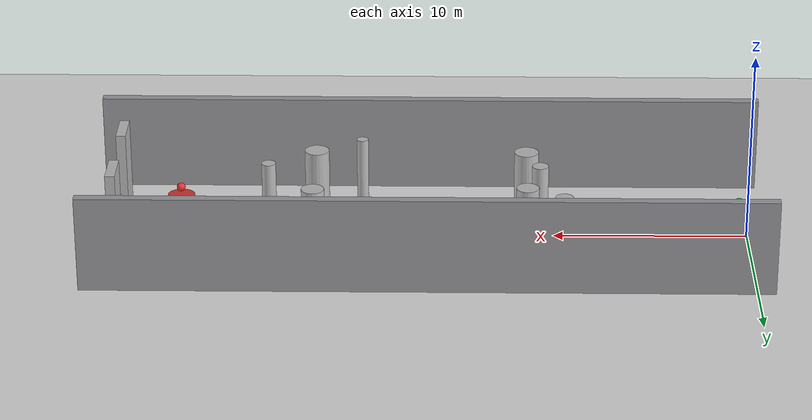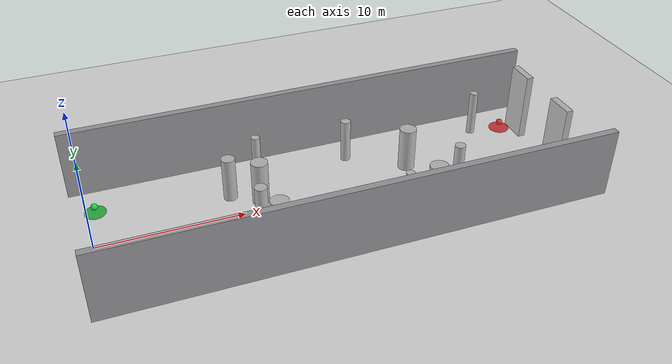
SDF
<sdf version="1.10">
 <world name="obstacle_avoidance">
  <physics type="ode">
   <max_step_size>0.0040000000000000001</max_step_size>
   <real_time_factor>1</real_time_factor>
   <real_time_update_rate>250</real_time_update_rate>
  </physics>
  <plugin name="gz::sim::systems::Physics" filename="gz-sim-physics-system"/>
  <plugin name="gz::sim::systems::UserCommands" filename="gz-sim-user-commands-system"/>
  <plugin name="gz::sim::systems::SceneBroadcaster" filename="gz-sim-scene-broadcaster-system"/>
  <plugin name="gz::sim::systems::Contact" filename="gz-sim-contact-system"/>
  <plugin name="gz::sim::systems::Imu" filename="gz-sim-imu-system"/>
  <plugin name="gz::sim::systems::AirPressure" filename="gz-sim-air-pressure-system"/>
  <plugin name="gz::sim::systems::AirSpeed" filename="gz-sim-air-speed-system"/>
  <plugin name="gz::sim::systems::ApplyLinkWrench" filename="gz-sim-apply-link-wrench-system"/>
  <plugin name="gz::sim::systems::NavSat" filename="gz-sim-navsat-system"/>
  <plugin name="gz::sim::systems::Magnetometer" filename="gz-sim-magnetometer-system"/>
  <plugin name="gz::sim::systems::Sensors" filename="gz-sim-sensors-system">
   <render_engine>ogre2</render_engine>
  </plugin>
  <plugin name="custom::OpticalFlowSystem" filename="libOpticalFlowSystem.so"/>
  <plugin name="custom::GstCameraSystem" filename="libGstCameraSystem.so"/>
  <gravity>0 0 -9.8000000000000007</gravity>
  <magnetic_field>6.0000000000000002e-06 2.3e-05 -4.1999999999999998e-05</magnetic_field>
  <atmosphere type="adiabatic"/>
  <scene>
   <grid>true</grid>
   <ambient>0.449999988 0.449999988 0.449999988 1</ambient>
   <background>0.74000001 0.769999981 0.819999993 1</background>
   <shadows>true</shadows>
  </scene>
  <spherical_coordinates>
   <surface_model>EARTH_WGS84</surface_model>
   <world_frame_orientation>ENU</world_frame_orientation>
   <latitude_deg>47.397971057728974</latitude_deg>
   <longitude_deg>8.5461637398001464</longitude_deg>
   <elevation>0</elevation>
   <heading_deg>0</heading_deg>
  </spherical_coordinates>
  <model name="ground_plane">
   <static>true</static>
   <link name="link">
    <collision name="collision">
     <geometry><plane><normal>0 0 1</normal><size>1 1</size></plane></geometry>
    </collision>
    <visual name="visual">
     <geometry><plane><normal>0 0 1</normal><size>120 120</size></plane></geometry>
     <material>
      <ambient>0.850000024 0.850000024 0.850000024 1</ambient>
      <diffuse>0.850000024 0.850000024 0.850000024 1</diffuse>
      <specular>0.400000006 0.400000006 0.400000006 1</specular>
     </material>
    </visual>
    <inertial>
     <mass>1</mass>
     <inertia><ixx>1</ixx><ixy>0</ixy><ixz>0</ixz><iyy>1</iyy><iyz>0</iyz><izz>1</izz></inertia>
    </inertial>
   </link>
  </model>
  <model name="lane_left_wall">
   <static>false</static>
   <pose>16.477354 6.271126 2.500000 0 0 0.000000</pose>
   <link name="link">
    <collision name="collision">
     <geometry><box><size>34.807668 0.500000 5.000000</size></box></geometry>
    </collision>
    <visual name="visual">
     <geometry><box><size>34.807668 0.500000 5.000000</size></box></geometry>
     <material>
      <ambient>0.5 0.5 0.519999981 1</ambient>
      <diffuse>0.600000024 0.600000024 0.620000005 1</diffuse>
     </material>
    </visual>
    <inertial>
     <mass>1</mass>
     <inertia><ixx>1</ixx><ixy>0</ixy><ixz>0</ixz><iyy>1</iyy><iyz>0</iyz><izz>1</izz></inertia>
    </inertial>
   </link>
  </model>
  <model name="lane_right_wall">
   <static>false</static>
   <pose>16.477354 -6.271126 2.500000 0 0 0.000000</pose>
   <link name="link">
    <collision name="collision">
     <geometry><box><size>34.807668 0.500000 5.000000</size></box></geometry>
    </collision>
    <visual name="visual">
     <geometry><box><size>34.807668 0.500000 5.000000</size></box></geometry>
     <material>
      <ambient>0.5 0.5 0.519999981 1</ambient>
      <diffuse>0.600000024 0.600000024 0.620000005 1</diffuse>
     </material>
    </visual>
    <inertial>
     <mass>1</mass>
     <inertia><ixx>1</ixx><ixy>0</ixy><ixz>0</ixz><iyy>1</iyy><iyz>0</iyz><izz>1</izz></inertia>
    </inertial>
   </link>
  </model>
  <model name="cyl_01">
   <static>false</static>
   <pose>12 4 1.5999992086633334 2.2687360345456637e-18 4.5657228771581074e-18 -1.896154608907737e-19</pose>
   <link name="link">
    <collision name="collision">
     <geometry>
      <cylinder><radius>0.29999999999999999</radius><length>3.2000000000000002</length></cylinder>
     </geometry>
    </collision>
    <visual name="visual">
     <geometry>
      <cylinder><radius>0.29999999999999999</radius><length>3.2000000000000002</length></cylinder>
     </geometry>
    </visual>
    <inertial>
     <mass>1</mass>
     <inertia><ixx>1</ixx><ixy>0</ixy><ixz>0</ixz><iyy>1</iyy><iyz>0</iyz><izz>1</izz></inertia>
    </inertial>
   </link>
  </model>
  <model name="cyl_02">
   <static>false</static>
   <pose>20 -4.0999999999999996 1.7999992086633334 -5.95015447457351e-18 -7.1830272029298781e-18 8.102279845254366e-20</pose>
   <link name="link">
    <collision name="collision">
     <geometry>
      <cylinder><radius>0.29999999999999999</radius><length>3.6000000000000001</length></cylinder>
     </geometry>
    </collision>
    <visual name="visual">
     <geometry>
      <cylinder><radius>0.29999999999999999</radius><length>3.6000000000000001</length></cylinder>
     </geometry>
    </visual>
    <inertial>
     <mass>1</mass>
     <inertia><ixx>1</ixx><ixy>0</ixy><ixz>0</ixz><iyy>1</iyy><iyz>0</iyz><izz>1</izz></inertia>
    </inertial>
   </link>
  </model>
  <model name="cyl_03">
   <static>false</static>
   <pose>29 3.7999999999999998 1.6999992086633333 2.9183300555717811e-18 3.6794603956307752e-18 6.9962869253696579e-20</pose>
   <link name="link">
    <collision name="collision">
     <geometry>
      <cylinder><radius>0.29999999999999999</radius><length>3.3999999999999999</length></cylinder>
     </geometry>
    </collision>
    <visual name="visual">
     <geometry>
      <cylinder><radius>0.29999999999999999</radius><length>3.3999999999999999</length></cylinder>
     </geometry>
    </visual>
    <inertial>
     <mass>1</mass>
     <inertia><ixx>1</ixx><ixy>0</ixy><ixz>0</ixz><iyy>1</iyy><iyz>0</iyz><izz>1</izz></inertia>
    </inertial>
   </link>
  </model>
  <model name="block_01">
   <static>false</static>
   <pose>11.377972 1.004171 1.600000 0 0 0.000000</pose>
   <link name="link">
    <collision name="collision">
     <geometry><cylinder><radius>0.580680</radius><length>3.200000</length></cylinder></geometry>
    </collision>
    <visual name="visual">
     <geometry><cylinder><radius>0.580680</radius><length>3.200000</length></cylinder></geometry>
    </visual>
    <inertial>
     <mass>1</mass>
     <inertia><ixx>1</ixx><ixy>0</ixy><ixz>0</ixz><iyy>1</iyy><iyz>0</iyz><izz>1</izz></inertia>
    </inertial>
   </link>
  </model>
  <model name="block_02">
   <static>false</static>
   <pose>11.377972 -3.445346 1.600000 0 0 0.000000</pose>
   <link name="link">
    <collision name="collision">
     <geometry><cylinder><radius>0.631644</radius><length>3.200000</length></cylinder></geometry>
    </collision>
    <visual name="visual">
     <geometry><cylinder><radius>0.631644</radius><length>3.200000</length></cylinder></geometry>
    </visual>
    <inertial>
     <mass>1</mass>
     <inertia><ixx>1</ixx><ixy>0</ixy><ixz>0</ixz><iyy>1</iyy><iyz>0</iyz><izz>1</izz></inertia>
    </inertial>
   </link>
  </model>
  <model name="block_03">
   <static>false</static>
   <pose>22.380177 1.285800 1.600000 0 0 0.000000</pose>
   <link name="link">
    <collision name="collision">
     <geometry><cylinder><radius>0.591450</radius><length>3.200000</length></cylinder></geometry>
    </collision>
    <visual name="visual">
     <geometry><cylinder><radius>0.591450</radius><length>3.200000</length></cylinder></geometry>
    </visual>
    <inertial>
     <mass>1</mass>
     <inertia><ixx>1</ixx><ixy>0</ixy><ixz>0</ixz><iyy>1</iyy><iyz>0</iyz><izz>1</izz></inertia>
    </inertial>
   </link>
  </model>
  <model name="block_04">
   <static>false</static>
   <pose>22.380177 -3.539328 1.600000 0 0 0.000000</pose>
   <link name="link">
    <collision name="collision">
     <geometry><cylinder><radius>0.637507</radius><length>3.200000</length></cylinder></geometry>
    </collision>
    <visual name="visual">
     <geometry><cylinder><radius>0.637507</radius><length>3.200000</length></cylinder></geometry>
    </visual>
    <inertial>
     <mass>1</mass>
     <inertia><ixx>1</ixx><ixy>0</ixy><ixz>0</ixz><iyy>1</iyy><iyz>0</iyz><izz>1</izz></inertia>
    </inertial>
   </link>
  </model>
  <model name="block_05">
   <static>false</static>
   <pose>10.682277 -1.696494 1.600000 0 0 0.000000</pose>
   <link name="link">
    <collision name="collision">
     <geometry><cylinder><radius>0.424816</radius><length>3.200000</length></cylinder></geometry>
    </collision>
    <visual name="visual">
     <geometry><cylinder><radius>0.424816</radius><length>3.200000</length></cylinder></geometry>
    </visual>
    <inertial>
     <mass>1</mass>
     <inertia><ixx>1</ixx><ixy>0</ixy><ixz>0</ixz><iyy>1</iyy><iyz>0</iyz><izz>1</izz></inertia>
    </inertial>
   </link>
  </model>
  <model name="block_06">
   <static>false</static>
   <pose>18.642641 3.784791 1.600000 0 0 0.000000</pose>
   <link name="link">
    <collision name="collision">
     <geometry><cylinder><radius>0.350562</radius><length>3.200000</length></cylinder></geometry>
    </collision>
    <visual name="visual">
     <geometry><cylinder><radius>0.350562</radius><length>3.200000</length></cylinder></geometry>
    </visual>
    <inertial>
     <mass>1</mass>
     <inertia><ixx>1</ixx><ixy>0</ixy><ixz>0</ixz><iyy>1</iyy><iyz>0</iyz><izz>1</izz></inertia>
    </inertial>
   </link>
  </model>
  <model name="block_07">
   <static>false</static>
   <pose>9.542309 2.130448 1.600000 0 0 0.000000</pose>
   <link name="link">
    <collision name="collision">
     <geometry><cylinder><radius>0.470896</radius><length>3.200000</length></cylinder></geometry>
    </collision>
    <visual name="visual">
     <geometry><cylinder><radius>0.470896</radius><length>3.200000</length></cylinder></geometry>
    </visual>
    <inertial>
     <mass>1</mass>
     <inertia><ixx>1</ixx><ixy>0</ixy><ixz>0</ixz><iyy>1</iyy><iyz>0</iyz><izz>1</izz></inertia>
    </inertial>
   </link>
  </model>
  <model name="block_08">
   <static>false</static>
   <pose>24.823506 -1.874268 1.600000 0 0 0.000000</pose>
   <link name="link">
    <collision name="collision">
     <geometry><cylinder><radius>0.369808</radius><length>3.200000</length></cylinder></geometry>
    </collision>
    <visual name="visual">
     <geometry><cylinder><radius>0.369808</radius><length>3.200000</length></cylinder></geometry>
    </visual>
    <inertial>
     <mass>1</mass>
     <inertia><ixx>1</ixx><ixy>0</ixy><ixz>0</ixz><iyy>1</iyy><iyz>0</iyz><izz>1</izz></inertia>
    </inertial>
   </link>
  </model>
  <model name="start_marker">
   <static>true</static>
   <pose>0.573520 0.968252 2.000000 0 0 0.000000</pose>
   <link name="link">
    <gravity>false</gravity>
    <kinematic>true</kinematic>
    <visual name="base_ring">
     <geometry>
      <cylinder><radius>0.69999999999999996</radius><length>0.040000000000000001</length></cylinder>
     </geometry>
     <material>
      <ambient>0.100000001 0.699999988 0.200000003 0.850000024</ambient>
      <diffuse>0.100000001 0.699999988 0.200000003 0.850000024</diffuse>
      <specular>0.200000003 0.200000003 0.200000003 1</specular>
     </material>
    </visual>
    <visual name="center_sphere">
     <pose>0 0 0.45000000000000001 0 0 0</pose>
     <geometry><sphere><radius>0.22</radius></sphere></geometry>
     <material>
      <ambient>0.100000001 0.850000024 0.25 1</ambient>
      <diffuse>0.100000001 0.850000024 0.25 1</diffuse>
      <specular>0.300000012 0.300000012 0.300000012 1</specular>
     </material>
    </visual>
    <inertial>
     <mass>1</mass>
     <inertia><ixx>1</ixx><ixy>0</ixy><ixz>0</ixz><iyy>1</iyy><iyz>0</iyz><izz>1</izz></inertia>
    </inertial>
   </link>
  </model>
  <model name="goal_marker">
   <static>true</static>
   <pose>29.181188 0.340554 2.380000 0 0 0.000000</pose>
   <link name="link">
    <gravity>false</gravity>
    <kinematic>true</kinematic>
    <visual name="base_ring">
     <geometry>
      <cylinder><radius>0.69999999999999996</radius><length>0.040000000000000001</length></cylinder>
     </geometry>
     <material>
      <ambient>0.850000024 0.150000006 0.150000006 0.850000024</ambient>
      <diffuse>0.850000024 0.150000006 0.150000006 0.850000024</diffuse>
      <specular>0.200000003 0.200000003 0.200000003 1</specular>
     </material>
    </visual>
    <visual name="center_sphere">
     <pose>0 0 0.45000000000000001 0 0 0</pose>
     <geometry><sphere><radius>0.22</radius></sphere></geometry>
     <material>
      <ambient>0.949999988 0.200000003 0.200000003 1</ambient>
      <diffuse>0.949999988 0.200000003 0.200000003 1</diffuse>
      <specular>0.300000012 0.300000012 0.300000012 1</specular>
     </material>
    </visual>
    <inertial>
     <mass>1</mass>
     <inertia><ixx>1</ixx><ixy>0</ixy><ixz>0</ixz><iyy>1</iyy><iyz>0</iyz><izz>1</izz></inertia>
    </inertial>
   </link>
  </model>
  <model name="goal_gate_left">
   <static>false</static>
   <pose>32.381188 2.840554 2.500000 0 0 0.000000</pose>
   <link name="link">
    <collision name="collision">
     <geometry><box><size>0.500000 2.000000 5.000000</size></box></geometry>
    </collision>
    <visual name="visual"><geometry><box><size>0.500000 2.000000 5.000000</size></box></geometry></visual>
    <inertial>
     <mass>1</mass>
     <inertia><ixx>1</ixx><ixy>0</ixy><ixz>0</ixz><iyy>1</iyy><iyz>0</iyz><izz>1</izz></inertia>
    </inertial>
   </link>
  </model>
  <model name="goal_gate_right">
   <static>false</static>
   <pose>32.381188 -2.159446 2.500000 0 0 0.000000</pose>
   <link name="link">
    <collision name="collision">
     <geometry><box><size>0.500000 2.000000 5.000000</size></box></geometry>
    </collision>
    <visual name="visual"><geometry><box><size>0.500000 2.000000 5.000000</size></box></geometry></visual>
    <inertial>
     <mass>1</mass>
     <inertia><ixx>1</ixx><ixy>0</ixy><ixz>0</ixz><iyy>1</iyy><iyz>0</iyz><izz>1</izz></inertia>
    </inertial>
   </link>
  </model>
  <light name="sunUTC" type="directional">
   <pose>0 0 500 0 0 0</pose>
   <intensity>1</intensity>
   <direction>0.001 0.625 -0.78000000000000003</direction>
   <diffuse>0.899999976 0.899999976 0.899999976 1</diffuse>
   <specular>0.25 0.25 0.25 1</specular>
   <attenuation><range>2000</range><linear>0</linear><constant>1</constant><quadratic>0</quadratic></attenuation>
   <spot><inner_angle>0</inner_angle><outer_angle>0</outer_angle><falloff>0</falloff></spot>
  </light>
 </world>
</sdf>
